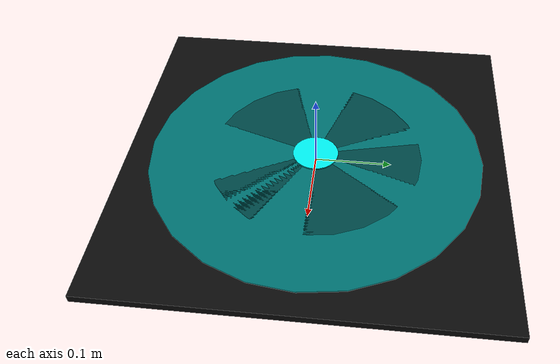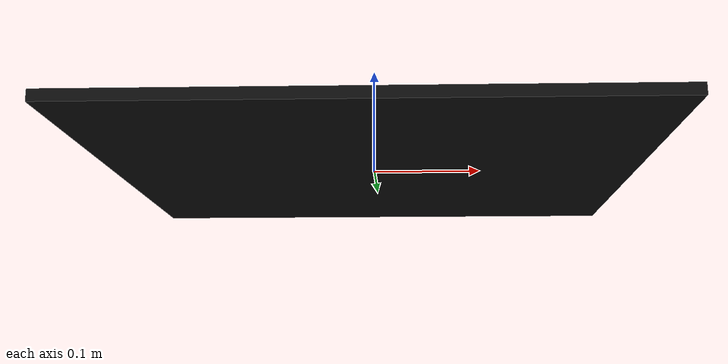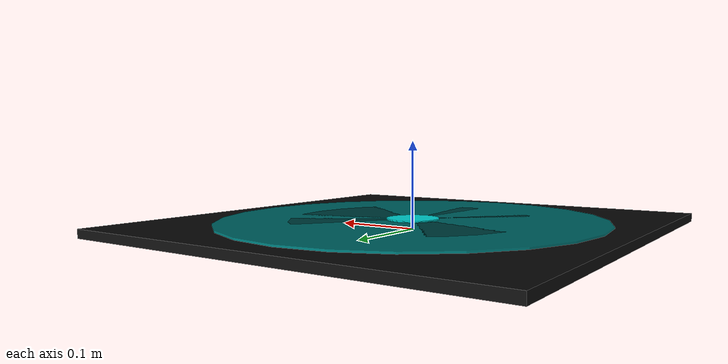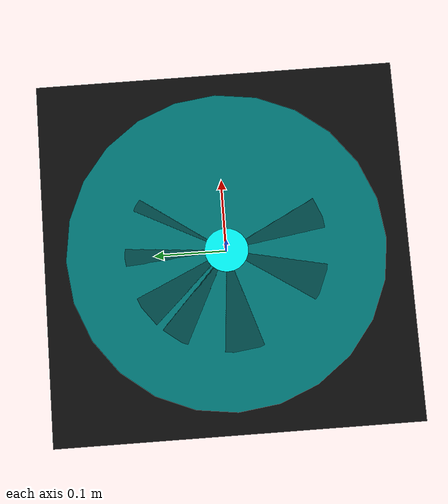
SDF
<?xml version="1.0"?>
<sdf version="1.7">
  <model name="charging_pad">
    <static>true</static>
    <link name="link">
      <!-- Pad body flush with floor -->
      <collision name="pad_col"><pose>0 0 0.005 0 0 0</pose><geometry><box><size>0.5 0.5 0.01</size></box></geometry></collision>
      <visual name="pad_body">
        <pose>0 0 0.005 0 0 0</pose>
        <geometry><box><size>0.5 0.5 0.01</size></box></geometry>
        <material><ambient>0.05 0.05 0.05 1</ambient><diffuse>0.05 0.05 0.05 1</diffuse></material>
      </visual>
      <!-- Coil ring marking (cyan) -->
      <visual name="ring_outer">
        <pose>0 0 0.011 0 0 0</pose>
        <geometry><cylinder><radius>0.22</radius><length>0.002</length></cylinder></geometry>
        <material><ambient>0.0 0.8 0.8 0.6</ambient><diffuse>0.0 0.8 0.8 0.6</diffuse></material>
      </visual>
      <visual name="ring_inner">
        <pose>0 0 0.011 0 0 0</pose>
        <geometry><cylinder><radius>0.14</radius><length>0.002</length></cylinder></geometry>
        <material><ambient>0.0 0.5 0.5 0.6</ambient></material>
      </visual>
      <!-- Centre dot -->
      <visual name="centre">
        <pose>0 0 0.012 0 0 0</pose>
        <geometry><cylinder><radius>0.03</radius><length>0.002</length></cylinder></geometry>
        <material><ambient>0.0 1.0 1.0 1</ambient><emissive>0.0 0.5 0.5 1</emissive></material>
      </visual>
    </link>
  </model>
</sdf>
